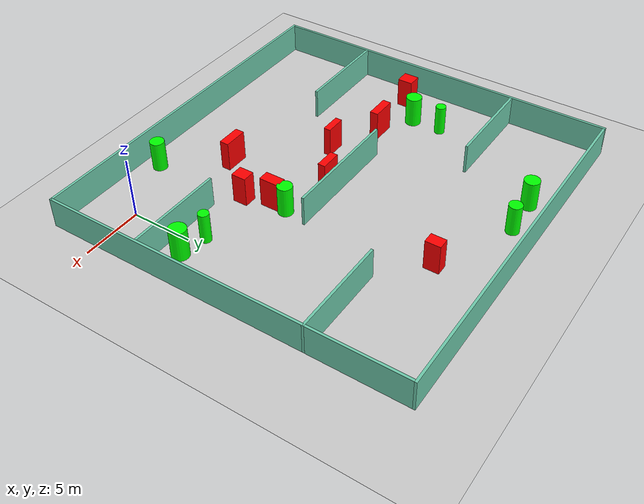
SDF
<sdf version="1.7">
 <world name="default">
  <light name="sun" type="directional">
   <pose>0 0 10 0 -0 0</pose>
   <diffuse>0.8 0.8 0.8 1</diffuse>
   <specular>0.2 0.2 0.2 1</specular>
   <attenuation>
    <range>1000</range>
    <constant>0.9</constant>
    <linear>0.01</linear>
    <quadratic>0.001</quadratic>
   </attenuation>
   <direction>-0.5 0.1 -0.9</direction>
   <spot><inner_angle>0</inner_angle><outer_angle>0</outer_angle><falloff>0</falloff></spot>
  </light>
  <model name="ground_plane">
   <static>1</static>
   <link name="link">
    <collision name="collision">
     <geometry><plane><normal>0 0 1</normal><size>100 100</size></plane></geometry>
     <surface>
      <contact><collide_bitmask>65535</collide_bitmask></contact>
      <friction><ode><mu>100</mu><mu2>50</mu2></ode></friction>
     </surface>
    </collision>
    <visual name="visual">
     <cast_shadows>0</cast_shadows>
     <geometry><plane><normal>0 0 1</normal><size>100 100</size></plane></geometry>
     <material>
      <script><uri>file://media/materials/scripts/gazebo.material</uri><name>Gazebo/Grey</name></script>
     </material>
    </visual>
   </link>
  </model>
  <gravity>0 0 -9.8</gravity>
  <magnetic_field>6e-06 2.3e-05 -4.2e-05</magnetic_field>
  <atmosphere type="adiabatic"/>
  <physics type="ode">
   <max_step_size>0.001</max_step_size>
   <real_time_factor>1</real_time_factor>
   <real_time_update_rate>1000</real_time_update_rate>
  </physics>
  <scene><ambient>0.4 0.4 0.4 1</ambient><background>0.7 0.7 0.7 1</background><shadows>1</shadows></scene>
  <spherical_coordinates>
   <surface_model>EARTH_WGS84</surface_model>
   <latitude_deg>0</latitude_deg>
   <longitude_deg>0</longitude_deg>
   <elevation>0</elevation>
   <heading_deg>0</heading_deg>
  </spherical_coordinates>
  <model name="my_base_walls">
   <link name="Wall_10">
    <collision name="Wall_10_Collision">
     <geometry><box><size>8.2 0.2 2.5</size></box></geometry>
     <pose>0 0 1.25 0 -0 0</pose>
    </collision>
    <visual name="Wall_10_Visual">
     <pose>0 0 1.25 0 -0 0</pose>
     <geometry><box><size>8.2 0.2 2.5</size></box></geometry>
     <material>
      <script><uri>file://media/materials/scripts/gazebo.material</uri><name>Gazebo/Grey</name></script>
      <ambient>0.435294 0.796078 0.67451 1</ambient>
     </material>
     <meta><layer>0</layer></meta>
    </visual>
    <pose>-11 -7 0 0 -0 0</pose>
   </link>
   <link name="Wall_12">
    <collision name="Wall_12_Collision">
     <geometry><box><size>8.2 0.2 2.5</size></box></geometry>
     <pose>0 0 1.25 0 -0 0</pose>
    </collision>
    <visual name="Wall_12_Visual">
     <pose>0 0 1.25 0 -0 0</pose>
     <geometry><box><size>8.2 0.2 2.5</size></box></geometry>
     <material>
      <script><uri>file://media/materials/scripts/gazebo.material</uri><name>Gazebo/Grey</name></script>
      <ambient>0.435294 0.796078 0.67451 1</ambient>
     </material>
     <meta><layer>0</layer></meta>
    </visual>
    <pose>-11 7 0 0 -0 0</pose>
   </link>
   <link name="Wall_14">
    <collision name="Wall_14_Collision">
     <geometry><box><size>8.2 0.2 2.5</size></box></geometry>
     <pose>0 0 1.25 0 -0 0</pose>
    </collision>
    <visual name="Wall_14_Visual">
     <pose>0 0 1.25 0 -0 0</pose>
     <geometry><box><size>8.2 0.2 2.5</size></box></geometry>
     <material>
      <script><uri>file://media/materials/scripts/gazebo.material</uri><name>Gazebo/Grey</name></script>
      <ambient>0.435294 0.796078 0.67451 1</ambient>
     </material>
     <meta><layer>0</layer></meta>
    </visual>
    <pose>11 7 0 0 -0 3.14159</pose>
   </link>
   <link name="Wall_16">
    <collision name="Wall_16_Collision">
     <geometry><box><size>10.2 0.2 2.5</size></box></geometry>
     <pose>0 0 1.25 0 -0 0</pose>
    </collision>
    <visual name="Wall_16_Visual">
     <pose>0 0 1.25 0 -0 0</pose>
     <geometry><box><size>10.2 0.2 2.5</size></box></geometry>
     <material>
      <script><uri>file://media/materials/scripts/gazebo.material</uri><name>Gazebo/Grey</name></script>
      <ambient>0.435294 0.796078 0.67451 1</ambient>
     </material>
     <meta><layer>0</layer></meta>
    </visual>
    <pose>0 0 0 0 -0 3.14159</pose>
   </link>
   <link name="Wall_2">
    <collision name="Wall_2_Collision">
     <geometry><box><size>30.2 0.2 2.5</size></box></geometry>
     <pose>0 0 1.25 0 -0 0</pose>
    </collision>
    <visual name="Wall_2_Visual">
     <pose>0 0 1.25 0 -0 0</pose>
     <geometry><box><size>30.2 0.2 2.5</size></box></geometry>
     <material>
      <script><uri>file://media/materials/scripts/gazebo.material</uri><name>Gazebo/Grey</name></script>
      <ambient>0.435294 0.796078 0.67451 1</ambient>
     </material>
     <meta><layer>0</layer></meta>
    </visual>
    <pose>0 -15 0 0 -0 3.14159</pose>
   </link>
   <link name="Wall_3">
    <collision name="Wall_3_Collision">
     <geometry><box><size>30.2 0.2 2.5</size></box></geometry>
     <pose>0 0 1.25 0 -0 0</pose>
    </collision>
    <visual name="Wall_3_Visual">
     <pose>0 0 1.25 0 -0 0</pose>
     <geometry><box><size>30.2 0.2 2.5</size></box></geometry>
     <material>
      <script><uri>file://media/materials/scripts/gazebo.material</uri><name>Gazebo/Grey</name></script>
      <ambient>0.435294 0.796078 0.67451 1</ambient>
     </material>
     <meta><layer>0</layer></meta>
    </visual>
    <pose>-15 0 0 0 -0 1.5708</pose>
   </link>
   <link name="Wall_4">
    <collision name="Wall_4_Collision">
     <geometry><box><size>30.2 0.2 2.5</size></box></geometry>
     <pose>0 0 1.25 0 -0 0</pose>
    </collision>
    <visual name="Wall_4_Visual">
     <pose>0 0 1.25 0 -0 0</pose>
     <geometry><box><size>30.2 0.2 2.5</size></box></geometry>
     <material>
      <script><uri>file://media/materials/scripts/gazebo.material</uri><name>Gazebo/Grey</name></script>
      <ambient>0.435294 0.796078 0.67451 1</ambient>
     </material>
     <meta><layer>0</layer></meta>
    </visual>
    <pose>0 15 0 0 -0 0</pose>
   </link>
   <link name="Wall_6">
    <collision name="Wall_6_Collision">
     <geometry><box><size>30.2 0.2 2.5</size></box></geometry>
     <pose>0 0 1.25 0 -0 0</pose>
    </collision>
    <visual name="Wall_6_Visual">
     <pose>0 0 1.25 0 -0 0</pose>
     <geometry><box><size>30.2 0.2 2.5</size></box></geometry>
     <material>
      <script><uri>file://media/materials/scripts/gazebo.material</uri><name>Gazebo/Grey</name></script>
      <ambient>0.435294 0.796078 0.67451 1</ambient>
     </material>
     <meta><layer>0</layer></meta>
    </visual>
    <pose>15 0 0 0 -0 1.5708</pose>
   </link>
   <link name="Wall_8">
    <collision name="Wall_8_Collision">
     <geometry><box><size>8.2 0.2 2.5</size></box></geometry>
     <pose>0 0 1.25 0 -0 0</pose>
    </collision>
    <visual name="Wall_8_Visual">
     <pose>0 0 1.25 0 -0 0</pose>
     <geometry><box><size>8.2 0.2 2.5</size></box></geometry>
     <material>
      <script><uri>file://media/materials/scripts/gazebo.material</uri><name>Gazebo/Grey</name></script>
      <ambient>0.435294 0.796078 0.67451 1</ambient>
     </material>
     <meta><layer>0</layer></meta>
    </visual>
    <pose>11 -7 0 0 -0 3.14159</pose>
   </link>
   <static>1</static>
   <pose>-11 11 0 0 -0 0</pose>
  </model>
  <model name="cylinder1">
   <static>1</static>
   <link name="link">
    <inertial>
     <mass>1</mass>
     <inertia><ixx>0.5</ixx><ixy>0</ixy><ixz>0</ixz><iyy>0.5</iyy><iyz>0</iyz><izz>1</izz></inertia>
    </inertial>
    <collision name="collision">
     <geometry><cylinder><radius>0.6465371201594348</radius><length>2.5</length></cylinder></geometry>
    </collision>
    <visual name="visual">
     <geometry><cylinder><radius>0.6465371201594348</radius><length>2.5</length></cylinder></geometry>
     <material>
      <ambient>0 1 0 1</ambient>
      <diffuse>0 1 0 1</diffuse>
      <specular>0.1 0.1 0.1 1</specular>
      <emissive>0 0 0 0</emissive>
     </material>
    </visual>
   </link>
   <pose>-21.680237029330314 11.226085132411423 1.25 0 0 0</pose>
  </model>
  <model name="cylinder2">
   <static>1</static>
   <link name="link">
    <inertial>
     <mass>1</mass>
     <inertia><ixx>0.5</ixx><ixy>0</ixy><ixz>0</ixz><iyy>0.5</iyy><iyz>0</iyz><izz>1</izz></inertia>
    </inertial>
    <collision name="collision">
     <geometry><cylinder><radius>0.4294323146076798</radius><length>2.5</length></cylinder></geometry>
    </collision>
    <visual name="visual">
     <geometry><cylinder><radius>0.4294323146076798</radius><length>2.5</length></cylinder></geometry>
     <material>
      <ambient>0 1 0 1</ambient>
      <diffuse>0 1 0 1</diffuse>
      <specular>0.1 0.1 0.1 1</specular>
      <emissive>0 0 0 0</emissive>
     </material>
    </visual>
   </link>
   <pose>-0.75010156596203 6.097618091863897 1.25 0 0 0</pose>
  </model>
  <model name="cylinder3">
   <static>1</static>
   <link name="link">
    <inertial>
     <mass>1</mass>
     <inertia><ixx>0.5</ixx><ixy>0</ixy><ixz>0</ixz><iyy>0.5</iyy><iyz>0</iyz><izz>1</izz></inertia>
    </inertial>
    <collision name="collision">
     <geometry><cylinder><radius>0.5305687553854489</radius><length>2.5</length></cylinder></geometry>
    </collision>
    <visual name="visual">
     <geometry><cylinder><radius>0.5305687553854489</radius><length>2.5</length></cylinder></geometry>
     <material>
      <ambient>0 1 0 1</ambient>
      <diffuse>0 1 0 1</diffuse>
      <specular>0.1 0.1 0.1 1</specular>
      <emissive>0 0 0 0</emissive>
     </material>
    </visual>
   </link>
   <pose>-13.616609381336016 24.120241996014748 1.25 0 0 0</pose>
  </model>
  <model name="cylinder4">
   <static>1</static>
   <link name="link">
    <inertial>
     <mass>1</mass>
     <inertia><ixx>0.5</ixx><ixy>0</ixy><ixz>0</ixz><iyy>0.5</iyy><iyz>0</iyz><izz>1</izz></inertia>
    </inertial>
    <collision name="collision">
     <geometry><cylinder><radius>0.6272188040030675</radius><length>2.5</length></cylinder></geometry>
    </collision>
    <visual name="visual">
     <geometry><cylinder><radius>0.6272188040030675</radius><length>2.5</length></cylinder></geometry>
     <material>
      <ambient>0 1 0 1</ambient>
      <diffuse>0 1 0 1</diffuse>
      <specular>0.1 0.1 0.1 1</specular>
      <emissive>0 0 0 0</emissive>
     </material>
    </visual>
   </link>
   <pose>-16.84194702780826 23.939849299746747 1.25 0 0 0</pose>
  </model>
  <model name="cylinder5">
   <static>1</static>
   <link name="link">
    <inertial>
     <mass>1</mass>
     <inertia><ixx>0.5</ixx><ixy>0</ixy><ixz>0</ixz><iyy>0.5</iyy><iyz>0</iyz><izz>1</izz></inertia>
    </inertial>
    <collision name="collision">
     <geometry><cylinder><radius>0.6078109697678654</radius><length>2.5</length></cylinder></geometry>
    </collision>
    <visual name="visual">
     <geometry><cylinder><radius>0.6078109697678654</radius><length>2.5</length></cylinder></geometry>
     <material>
      <ambient>0 1 0 1</ambient>
      <diffuse>0 1 0 1</diffuse>
      <specular>0.1 0.1 0.1 1</specular>
      <emissive>0 0 0 0</emissive>
     </material>
    </visual>
   </link>
   <pose>-6.358526637376443 9.098499822133952 1.25 0 0 0</pose>
  </model>
  <model name="cylinder6">
   <static>1</static>
   <link name="link">
    <inertial>
     <mass>1</mass>
     <inertia><ixx>0.5</ixx><ixy>0</ixy><ixz>0</ixz><iyy>0.5</iyy><iyz>0</iyz><izz>1</izz></inertia>
    </inertial>
    <collision name="collision">
     <geometry><cylinder><radius>0.5816891445365369</radius><length>2.5</length></cylinder></geometry>
    </collision>
    <visual name="visual">
     <geometry><cylinder><radius>0.5816891445365369</radius><length>2.5</length></cylinder></geometry>
     <material>
      <ambient>0 1 0 1</ambient>
      <diffuse>0 1 0 1</diffuse>
      <specular>0.1 0.1 0.1 1</specular>
      <emissive>0 0 0 0</emissive>
     </material>
    </visual>
   </link>
   <pose>-5.395868020667235 -2.4104877741357513 1.25 0 0 0</pose>
  </model>
  <model name="cylinder7">
   <static>1</static>
   <link name="link">
    <inertial>
     <mass>1</mass>
     <inertia><ixx>0.5</ixx><ixy>0</ixy><ixz>0</ixz><iyy>0.5</iyy><iyz>0</iyz><izz>1</izz></inertia>
    </inertial>
    <collision name="collision">
     <geometry><cylinder><radius>0.42328334512891086</radius><length>2.5</length></cylinder></geometry>
    </collision>
    <visual name="visual">
     <geometry><cylinder><radius>0.42328334512891086</radius><length>2.5</length></cylinder></geometry>
     <material>
      <ambient>0 1 0 1</ambient>
      <diffuse>0 1 0 1</diffuse>
      <specular>0.1 0.1 0.1 1</specular>
      <emissive>0 0 0 0</emissive>
     </material>
    </visual>
   </link>
   <pose>-21.655164347038273 13.75022748587974 1.25 0 0 0</pose>
  </model>
  <model name="cylinder8">
   <static>1</static>
   <link name="link">
    <inertial>
     <mass>1</mass>
     <inertia><ixx>0.5</ixx><ixy>0</ixy><ixz>0</ixz><iyy>0.5</iyy><iyz>0</iyz><izz>1</izz></inertia>
    </inertial>
    <collision name="collision">
     <geometry><cylinder><radius>0.6902790532052605</radius><length>2.5</length></cylinder></geometry>
    </collision>
    <visual name="visual">
     <geometry><cylinder><radius>0.6902790532052605</radius><length>2.5</length></cylinder></geometry>
     <material>
      <ambient>0 1 0 1</ambient>
      <diffuse>0 1 0 1</diffuse>
      <specular>0.1 0.1 0.1 1</specular>
      <emissive>0 0 0 0</emissive>
     </material>
    </visual>
   </link>
   <pose>1.47497756438651 5.6279839953005215 1.25 0 0 0</pose>
  </model>
  <model name="box1">
   <static>1</static>
   <link name="link">
    <inertial>
     <mass>1</mass>
     <inertia><ixx>0.083</ixx><ixy>0</ixy><ixz>0</ixz><iyy>0.083</iyy><iyz>0</iyz><izz>0.083</izz></inertia>
    </inertial>
    <collision name="collision">
     <geometry><box><size>1.7451972623872694 0.6243634944459999 2.5</size></box></geometry>
    </collision>
    <visual name="visual">
     <geometry><box><size>1.7451972623872694 0.6243634944459999 2.5</size></box></geometry>
     <material>
      <ambient>1 0 0 1</ambient>
      <diffuse>1 0 0 1</diffuse>
      <specular>0.1 0.1 0.1 1</specular>
      <emissive>0 0 0 0</emissive>
     </material>
    </visual>
    <sensor name="my_contact" type="contact">
     <contact><collision>box_collision</collision><topic>__default_topic__</topic></contact>
    </sensor>
   </link>
   <pose>-10.718464723673705 9.966277124172226 1.25 0 0 0</pose>
  </model>
  <model name="box2">
   <static>1</static>
   <link name="link">
    <inertial>
     <mass>1</mass>
     <inertia><ixx>0.083</ixx><ixy>0</ixy><ixz>0</ixz><iyy>0.083</iyy><iyz>0</iyz><izz>0.083</izz></inertia>
    </inertial>
    <collision name="collision">
     <geometry><box><size>1.9919631660452994 0.7583945618489351 2.5</size></box></geometry>
    </collision>
    <visual name="visual">
     <geometry><box><size>1.9919631660452994 0.7583945618489351 2.5</size></box></geometry>
     <material>
      <ambient>1 0 0 1</ambient>
      <diffuse>1 0 0 1</diffuse>
      <specular>0.1 0.1 0.1 1</specular>
      <emissive>0 0 0 0</emissive>
     </material>
    </visual>
    <sensor name="my_contact" type="contact">
     <contact><collision>box_collision</collision><topic>__default_topic__</topic></contact>
    </sensor>
   </link>
   <pose>-9.028969803247959 2.09883796135507 1.25 0 0 0</pose>
  </model>
  <model name="box3">
   <static>1</static>
   <link name="link">
    <inertial>
     <mass>1</mass>
     <inertia><ixx>0.083</ixx><ixy>0</ixy><ixz>0</ixz><iyy>0.083</iyy><iyz>0</iyz><izz>0.083</izz></inertia>
    </inertial>
    <collision name="collision">
     <geometry><box><size>2.037108619581149 0.6930288526257641 2.5</size></box></geometry>
    </collision>
    <visual name="visual">
     <geometry><box><size>2.037108619581149 0.6930288526257641 2.5</size></box></geometry>
     <material>
      <ambient>1 0 0 1</ambient>
      <diffuse>1 0 0 1</diffuse>
      <specular>0.1 0.1 0.1 1</specular>
      <emissive>0 0 0 0</emissive>
     </material>
    </visual>
    <sensor name="my_contact" type="contact">
     <contact><collision>box_collision</collision><topic>__default_topic__</topic></contact>
    </sensor>
   </link>
   <pose>-18.866884015605415 9.674705521350479 1.25 0 0 0</pose>
  </model>
  <model name="box4">
   <static>1</static>
   <link name="link">
    <inertial>
     <mass>1</mass>
     <inertia><ixx>0.083</ixx><ixy>0</ixy><ixz>0</ixz><iyy>0.083</iyy><iyz>0</iyz><izz>0.083</izz></inertia>
    </inertial>
    <collision name="collision">
     <geometry><box><size>0.9152889737959553 1.2539500692831855 2.5</size></box></geometry>
    </collision>
    <visual name="visual">
     <geometry><box><size>0.9152889737959553 1.2539500692831855 2.5</size></box></geometry>
     <material>
      <ambient>1 0 0 1</ambient>
      <diffuse>1 0 0 1</diffuse>
      <specular>0.1 0.1 0.1 1</specular>
      <emissive>0 0 0 0</emissive>
     </material>
    </visual>
    <sensor name="my_contact" type="contact">
     <contact><collision>box_collision</collision><topic>__default_topic__</topic></contact>
    </sensor>
   </link>
   <pose>-7.198908741551895 21.16290001373615 1.25 0 0 0</pose>
  </model>
  <model name="box5">
   <static>1</static>
   <link name="link">
    <inertial>
     <mass>1</mass>
     <inertia><ixx>0.083</ixx><ixy>0</ixy><ixz>0</ixz><iyy>0.083</iyy><iyz>0</iyz><izz>0.083</izz></inertia>
    </inertial>
    <collision name="collision">
     <geometry><box><size>1.14064309765977 1.2571475989614203 2.5</size></box></geometry>
    </collision>
    <visual name="visual">
     <geometry><box><size>1.14064309765977 1.2571475989614203 2.5</size></box></geometry>
     <material>
      <ambient>1 0 0 1</ambient>
      <diffuse>1 0 0 1</diffuse>
      <specular>0.1 0.1 0.1 1</specular>
      <emissive>0 0 0 0</emissive>
     </material>
    </visual>
    <sensor name="my_contact" type="contact">
     <contact><collision>box_collision</collision><topic>__default_topic__</topic></contact>
    </sensor>
   </link>
   <pose>-23.86242745483529 9.403420633870873 1.25 0 0 0</pose>
  </model>
  <model name="box6">
   <static>1</static>
   <link name="link">
    <inertial>
     <mass>1</mass>
     <inertia><ixx>0.083</ixx><ixy>0</ixy><ixz>0</ixz><iyy>0.083</iyy><iyz>0</iyz><izz>0.083</izz></inertia>
    </inertial>
    <collision name="collision">
     <geometry><box><size>1.6946450149509598 0.5750315310424531 2.5</size></box></geometry>
    </collision>
    <visual name="visual">
     <geometry><box><size>1.6946450149509598 0.5750315310424531 2.5</size></box></geometry>
     <material>
      <ambient>1 0 0 1</ambient>
      <diffuse>1 0 0 1</diffuse>
      <specular>0.1 0.1 0.1 1</specular>
      <emissive>0 0 0 0</emissive>
     </material>
    </visual>
    <sensor name="my_contact" type="contact">
     <contact><collision>box_collision</collision><topic>__default_topic__</topic></contact>
    </sensor>
   </link>
   <pose>-14.764108347782265 7.743830541992187 1.25 0 0 0</pose>
  </model>
  <model name="box7">
   <static>1</static>
   <link name="link">
    <inertial>
     <mass>1</mass>
     <inertia><ixx>0.083</ixx><ixy>0</ixy><ixz>0</ixz><iyy>0.083</iyy><iyz>0</iyz><izz>0.083</izz></inertia>
    </inertial>
    <collision name="collision">
     <geometry><box><size>0.8981402639474403 1.6202779017326894 2.5</size></box></geometry>
    </collision>
    <visual name="visual">
     <geometry><box><size>0.8981402639474403 1.6202779017326894 2.5</size></box></geometry>
     <material>
      <ambient>1 0 0 1</ambient>
      <diffuse>1 0 0 1</diffuse>
      <specular>0.1 0.1 0.1 1</specular>
      <emissive>0 0 0 0</emissive>
     </material>
    </visual>
    <sensor name="my_contact" type="contact">
     <contact><collision>box_collision</collision><topic>__default_topic__</topic></contact>
    </sensor>
   </link>
   <pose>-6.495320679453105 7.848411719887393 1.25 0 0 0</pose>
  </model>
  <model name="box8">
   <static>1</static>
   <link name="link">
    <inertial>
     <mass>1</mass>
     <inertia><ixx>0.083</ixx><ixy>0</ixy><ixz>0</ixz><iyy>0.083</iyy><iyz>0</iyz><izz>0.083</izz></inertia>
    </inertial>
    <collision name="collision">
     <geometry><box><size>1.0465720519222776 1.2117676262972836 2.5</size></box></geometry>
    </collision>
    <visual name="visual">
     <geometry><box><size>1.0465720519222776 1.2117676262972836 2.5</size></box></geometry>
     <material>
      <ambient>1 0 0 1</ambient>
      <diffuse>1 0 0 1</diffuse>
      <specular>0.1 0.1 0.1 1</specular>
      <emissive>0 0 0 0</emissive>
     </material>
    </visual>
    <sensor name="my_contact" type="contact">
     <contact><collision>box_collision</collision><topic>__default_topic__</topic></contact>
    </sensor>
   </link>
   <pose>-5.81972631591924 5.630060186052905 1.25 0 0 0</pose>
  </model>
 </world>
</sdf>
